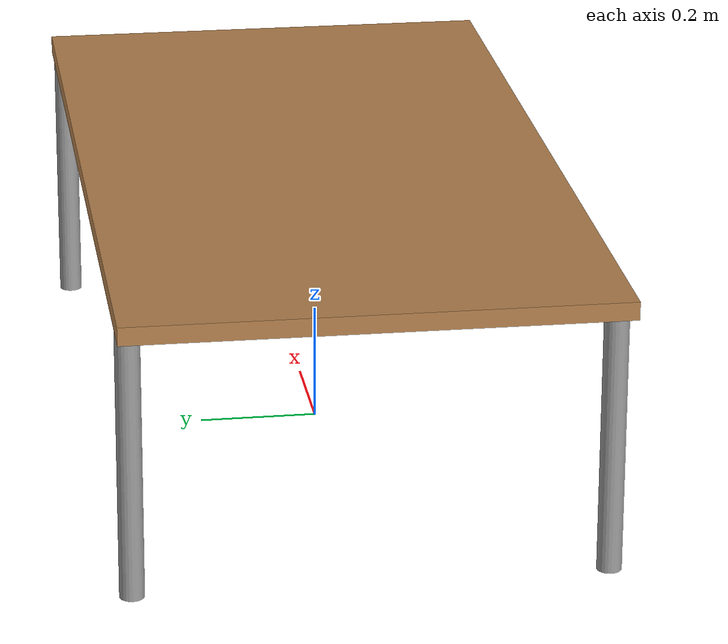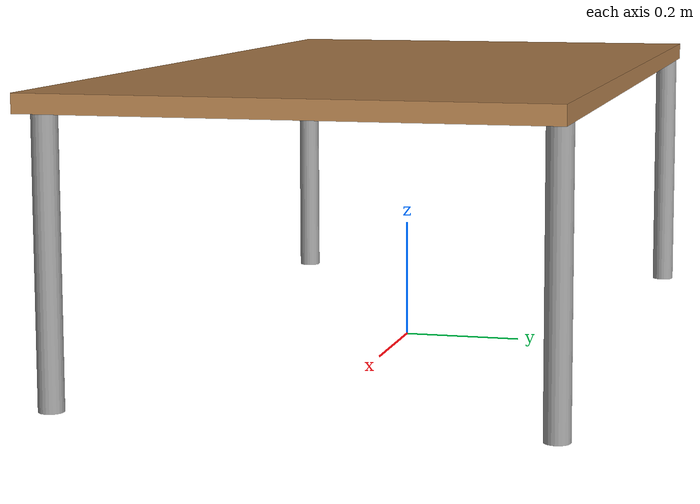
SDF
<?xml version="1.0" ?>

<sdf version="1.7">
  <model name="assignment_model-alignment-table">
    <static>true</static>
    <link name="table_root_link">
      <collision name="table_surface_collision">
	<pose>0 0 0.465 0 0 0</pose>
	<geometry>
          <box>
            <size>1.5 0.8 0.03</size>
          </box>
	</geometry>
	<surface>
          <friction>
            <ode>
              <mu>0.1</mu>
              <mu2>0.1</mu2>
            </ode>
          </friction>
	</surface>
      </collision>
      <visual name="table_surface_visual">
	<pose>0 0 0.465 0 0 0</pose>
	<geometry>
          <box>
            <size>1.5 0.8 0.03</size>
          </box>
	</geometry>
	<material>
          <script>
            <uri>file://media/materials/scripts/gazebo.material</uri>
            <name>Gazebo/Wood</name>
          </script>
	</material>
      </visual>
      <collision name="front_left_leg">
        <pose>0.68 0.38 0.225 0 0 0</pose>
        <geometry>
          <cylinder>
            <radius>0.02</radius>
            <length>0.45</length>
          </cylinder>
        </geometry>
      </collision>
      <visual name="front_left_leg">
        <pose>0.68 0.38 0.225 0 0 0</pose>
        <geometry>
          <cylinder>
            <radius>0.02</radius>
            <length>0.45</length>
          </cylinder>
        </geometry>
        <material>
          <script>
            <uri>file://media/materials/scripts/gazebo.material</uri>
            <name>Gazebo/Grey</name>
          </script>
        </material>
      </visual>
      <collision name="front_right_leg">
        <pose>0.68 -0.38 0.225 0 0 0</pose>
        <geometry>
          <cylinder>
            <radius>0.02</radius>
            <length>0.45</length>
          </cylinder>
        </geometry>
      </collision>
      <visual name="front_right_leg">
        <pose>0.68 -0.38 0.225 0 0 0</pose>
        <geometry>
          <cylinder>
            <radius>0.02</radius>
            <length>0.45</length>
          </cylinder>
        </geometry>
        <material>
          <script>
            <uri>file://media/materials/scripts/gazebo.material</uri>
            <name>Gazebo/Grey</name>
          </script>
        </material>
      </visual>
      <collision name="back_right_leg">
        <pose>-0.68 -0.38 0.225 0 0 0</pose>
        <geometry>
          <cylinder>
            <radius>0.02</radius>
            <length>0.45</length>
          </cylinder>
        </geometry>
      </collision>
      <visual name="back_right_leg">
        <pose>-0.68 -0.38 0.225 0 0 0</pose>
        <geometry>
          <cylinder>
            <radius>0.02</radius>
            <length>0.45</length>
          </cylinder>
        </geometry>
        <material>
          <script>
            <uri>file://media/materials/scripts/gazebo.material</uri>
            <name>Gazebo/Grey</name>
          </script>
        </material>
      </visual>
      <collision name="back_left_leg">
        <pose>-0.68 0.38 0.225 0 0 0</pose>
        <geometry>
          <cylinder>
            <radius>0.02</radius>
            <length>0.45</length>
          </cylinder>
        </geometry>
      </collision>
      <visual name="back_left_leg">
        <pose>-0.68 0.38 0.225 0 0 0</pose>
        <geometry>
          <cylinder>
            <radius>0.02</radius>
            <length>0.45</length>
          </cylinder>
        </geometry>
        <material>
          <script>
            <uri>file://media/materials/scripts/gazebo.material</uri>
            <name>Gazebo/Grey</name>
          </script>
        </material>
      </visual>
    </link>
  </model>
</sdf>
